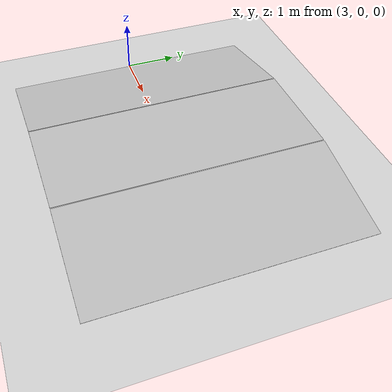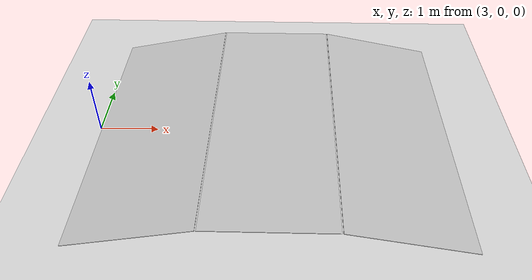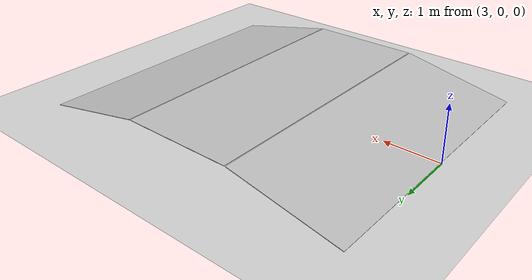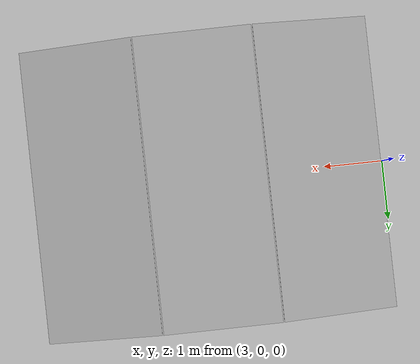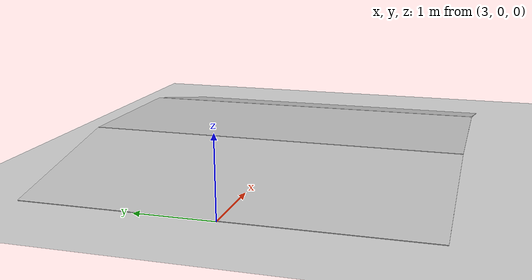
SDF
<?xml version="1.0" ?>

<sdf version="1.5">
    <world name="default">
        <!-- Target real time factor is the product of max_step_size and real_time_update_rate -->
        <!-- Negative real_time_update_rate means that Gazebo will run as fast as possible -->
        <physics type="ode">
            <type>world</type>
            <max_step_size>0.0005</max_step_size>
            <real_time_update_rate>2000</real_time_update_rate>
            <iters>2000</iters>
        </physics>
        <!-- A global light source -->
        <include>
            <uri>model://sun</uri>
        </include>
        <!-- A ground plane -->
        <include>
            <uri>model://ground_plane</uri>
        </include>
        <model name="box0">
            <static>true</static>
            <pose>4 0 0.2 0 -0.2 0</pose>
            <link name="link">
                <collision name="collision">
                <geometry>
                    <box>
                    <size>2 5 .01</size>
                    </box>
                </geometry>
                </collision>
                <visual name="visual">
                <geometry>
                    <box>
                    <size>2 5 .01</size>
                    </box>
                </geometry>
                </visual>
            </link>
        </model>
        <model name="box1">
            <static>true</static>
            <pose>6 0 0.4 0 0 0</pose>
            <link name="link">
                <collision name="collision">
                <geometry>
                    <box>
                    <size>2 5 .01</size>
                    </box>
                </geometry>
                </collision>
                <visual name="visual">
                <geometry>
                    <box>
                    <size>2 5 .01</size>
                    </box>
                </geometry>
                </visual>
            </link>
        </model>
        <model name="box2">
            <static>true</static>
            <pose>8 0 0.2 0 0.2 0</pose>
            <link name="link">
                <collision name="collision">
                <geometry>
                    <box>
                    <size>2 5 .01</size>
                    </box>
                </geometry>
                </collision>
                <visual name="visual">
                <geometry>
                    <box>
                    <size>2 5 .01</size>
                    </box>
                </geometry>
                </visual>
            </link>
        </model>
    </world>
</sdf>
